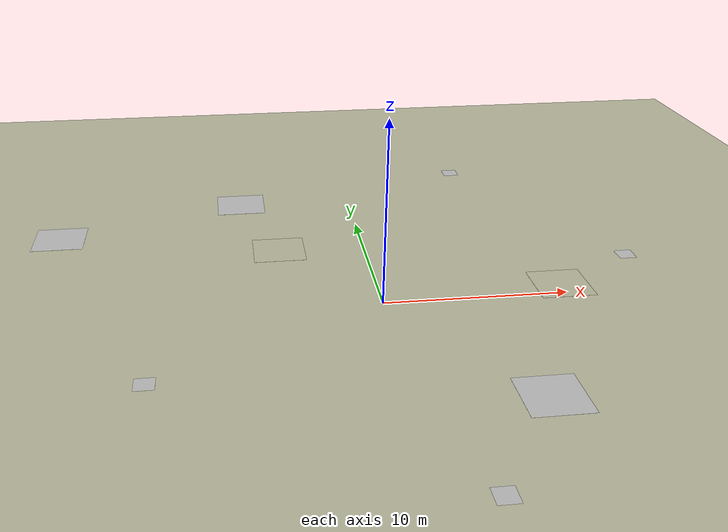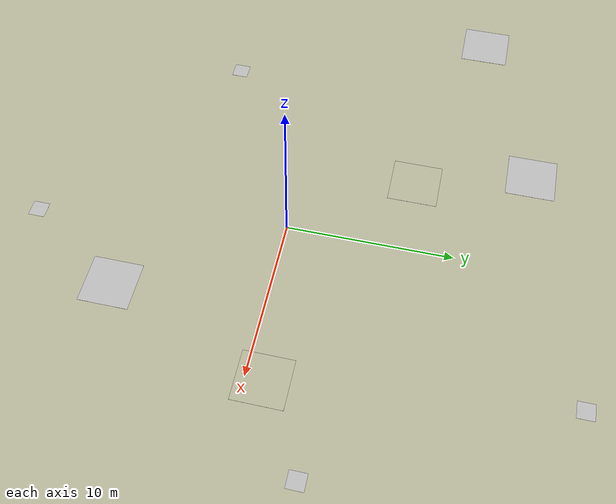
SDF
<sdf version="1.5">
 <world name="default">
  <light name="sun" type="directional">
   <pose>0 0 20 0 -0 0</pose>
   <diffuse>0.8 0.8 0.8 1</diffuse>
   <specular>0.1 0.1 0.1 1</specular>
   <attenuation>
    <range>1000</range>
    <constant>0.9</constant>
    <linear>0.01</linear>
    <quadratic>0.001</quadratic>
   </attenuation>
   <direction>-0.5 0.5 -1</direction>
  </light>
  <scene>
   <ambient>1 1 1 1</ambient>
   <background>0.9 0.9 0.9 1</background>
   <shadows>1</shadows>
   <origin_visual>0</origin_visual>
  </scene>
  <model name="ground_plane">
   <static>1</static>
   <link name="link">
    <collision name="collision">
     <geometry><plane><normal>0 0 1</normal><size>1 1</size></plane></geometry>
     <surface><friction><ode><mu>100</mu><mu2>50</mu2></ode></friction></surface>
    </collision>
    <visual name="visual">
     <cast_shadows>0</cast_shadows>
     <geometry><plane><normal>0 0 1</normal><size>1 1</size></plane></geometry>
     <material>
      <script><uri>file://media/materials/scripts/gazebo.material</uri><name>Gazebo/Residential</name></script>
     </material>
    </visual>
   </link>
  </model>
  <model name="ground_plane_2">
   <static>1</static>
   <link name="link">
    <collision name="collision">
     <geometry><plane><normal>0 0 1</normal><size>3 3</size></plane></geometry>
     <surface><friction><ode><mu>100</mu><mu2>50</mu2></ode></friction></surface>
    </collision>
    <visual name="visual">
     <cast_shadows>0</cast_shadows>
     <geometry><plane><normal>0 0 1</normal><size>3 3</size></plane></geometry>
     <material>
      <script><uri>file://media/materials/scripts/gazebo.material</uri><name>Gazebo/Residential</name></script>
     </material>
    </visual>
   </link>
   <pose>-5 7 0.0 0 -0 0</pose>
  </model>
  <model name="ground_plane_3">
   <static>1</static>
   <link name="link">
    <collision name="collision">
     <geometry><plane><normal>0 0 1</normal><size>3 3</size></plane></geometry>
     <surface><friction><ode><mu>100</mu><mu2>50</mu2></ode></friction></surface>
    </collision>
    <visual name="visual">
     <cast_shadows>0</cast_shadows>
     <geometry><plane><normal>0 0 1</normal><size>3 3</size></plane></geometry>
     <material>
      <script><uri>file://media/materials/scripts/gazebo.material</uri><name>Gazebo/Residential</name></script>
     </material>
    </visual>
   </link>
   <pose>10 1 0.0 0 -0 0</pose>
  </model>
  <model name="ground_plane_4">
   <static>1</static>
   <link name="link">
    <collision name="collision">
     <geometry><plane><normal>0 0 1</normal><size>1 1</size></plane></geometry>
    </collision>
    <visual name="visual">
     <geometry><plane><normal>0 0 1</normal><size>1 1</size></plane></geometry>
     <material>
      <script>
       <uri>model://sand_plane/materials/scripts</uri>
       <uri>model://sand_plane/materials/textures</uri>
       <name>vrc/sand</name>
      </script>
     </material>
    </visual>
   </link>
   <pose>-12 -6 0 0 0 0</pose>
  </model>
  <model name="ground_plane_5">
   <static>1</static>
   <link name="link">
    <collision name="collision">
     <geometry><plane><normal>0 0 1</normal><size>3 3</size></plane></geometry>
    </collision>
    <visual name="visual">
     <geometry><plane><normal>0 0 1</normal><size>3 3</size></plane></geometry>
     <material>
      <script>
       <uri>model://sand_plane/materials/scripts</uri>
       <uri>model://sand_plane/materials/textures</uri>
       <name>vrc/sand</name>
      </script>
     </material>
    </visual>
   </link>
   <pose>6 -9 0 0 0 0</pose>
  </model>
  <model name="ground_plane_6">
   <static>1</static>
   <link name="link">
    <collision name="collision">
     <geometry><plane><normal>0 0 1</normal><size>1 1</size></plane></geometry>
    </collision>
    <visual name="visual">
     <geometry><plane><normal>0 0 1</normal><size>1 1</size></plane></geometry>
     <material>
      <script>
       <uri>model://sand_plane/materials/scripts</uri>
       <uri>model://sand_plane/materials/textures</uri>
       <name>vrc/sand</name>
      </script>
     </material>
    </visual>
   </link>
   <pose>15 4 0 0 0 0</pose>
  </model>
  <model name="ground_plane_7">
   <static>1</static>
   <link name="link">
    <collision name="collision">
     <geometry><plane><normal>0 0 1</normal><size>3 3</size></plane></geometry>
    </collision>
    <visual name="visual">
     <geometry><plane><normal>0 0 1</normal><size>3 3</size></plane></geometry>
     <material>
      <script>
       <uri>model://sand_plane/materials/scripts</uri>
       <uri>model://sand_plane/materials/textures</uri>
       <name>vrc/sand</name>
      </script>
     </material>
    </visual>
   </link>
   <pose>-18 10 0 0 0 0</pose>
  </model>
  <model name="ground_plane_8">
   <static>1</static>
   <link name="link">
    <collision name="collision">
     <geometry><plane><normal>0 0 1</normal><size>1 1</size></plane></geometry>
    </collision>
    <visual name="visual">
     <geometry><plane><normal>0 0 1</normal><size>1 1</size></plane></geometry>
     <material>
      <script>
       <uri>model://sand_plane/materials/scripts</uri>
       <uri>model://sand_plane/materials/textures</uri>
       <name>vrc/sand</name>
      </script>
     </material>
    </visual>
   </link>
   <pose>8 18 0 0 0 0</pose>
  </model>
  <model name="ground_plane_9">
   <static>1</static>
   <link name="link">
    <collision name="collision">
     <geometry><plane><normal>0 0 1</normal><size>3 3</size></plane></geometry>
    </collision>
    <visual name="visual">
     <geometry><plane><normal>0 0 1</normal><size>3 3</size></plane></geometry>
     <material>
      <script>
       <uri>model://sand_plane/materials/scripts</uri>
       <uri>model://sand_plane/materials/textures</uri>
       <name>vrc/sand</name>
      </script>
     </material>
    </visual>
   </link>
   <pose>-7 14 0 0 0 0</pose>
  </model>
  <model name="ground_plane_10">
   <static>1</static>
   <link name="link">
    <collision name="collision">
     <geometry><plane><normal>0 0 1</normal><size>1 1</size></plane></geometry>
    </collision>
    <visual name="visual">
     <geometry><plane><normal>0 0 1</normal><size>1 1</size></plane></geometry>
     <material>
      <script>
       <uri>model://sand_plane/materials/scripts</uri>
       <uri>model://sand_plane/materials/textures</uri>
       <name>vrc/sand</name>
      </script>
     </material>
    </visual>
   </link>
   <pose>2 -15 0 0 0 0</pose>
  </model>
  <plugin name="ros_interface_plugin" filename="librotors_gazebo_ros_interface_plugin.so"/>
  <physics name="default_physics" default="0" type="ode">
   <gravity>0 0 -9.8066</gravity>
   <ode>
    <solver>
     <type>quick</type>
     <iters>10</iters>
     <sor>1.3</sor>
     <use_dynamic_moi_rescaling>0</use_dynamic_moi_rescaling>
    </solver>
    <constraints>
     <cfm>0</cfm>
     <erp>0.2</erp>
     <contact_max_correcting_vel>100</contact_max_correcting_vel>
     <contact_surface_layer>0.001</contact_surface_layer>
    </constraints>
   </ode>
   <max_step_size>0.002</max_step_size>
   <real_time_factor>1</real_time_factor>
   <real_time_update_rate>500</real_time_update_rate>
   <magnetic_field>6e-06 2.3e-05 -4.2e-05</magnetic_field>
  </physics>
 </world>
</sdf>
